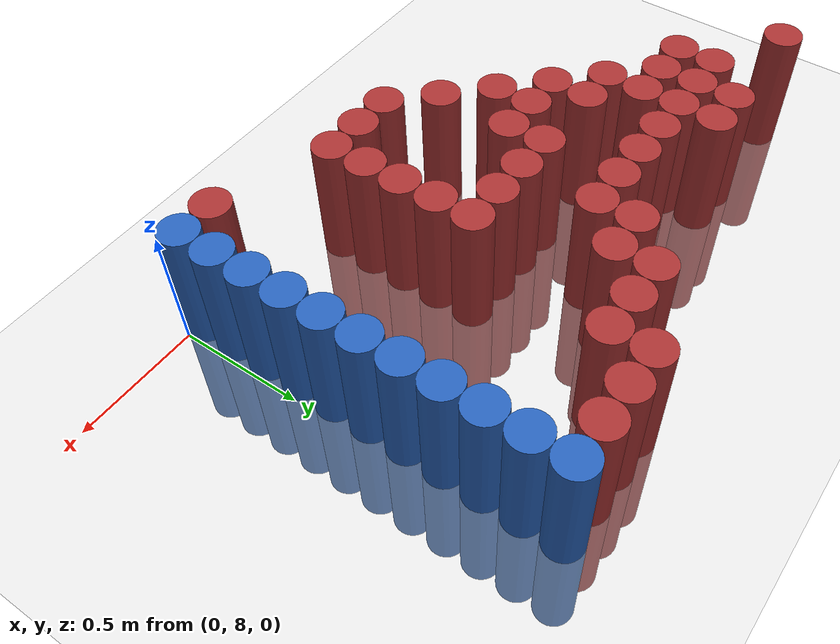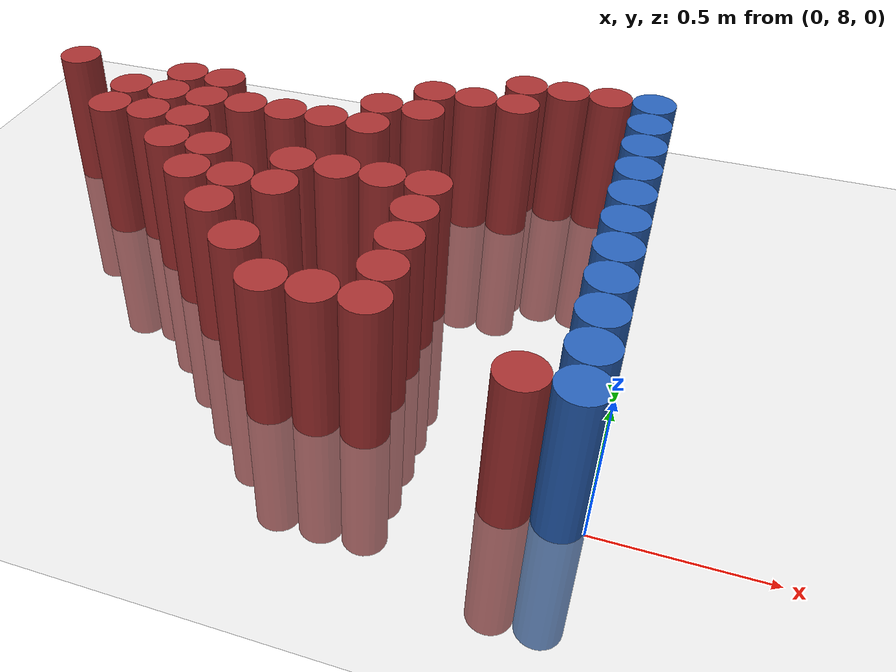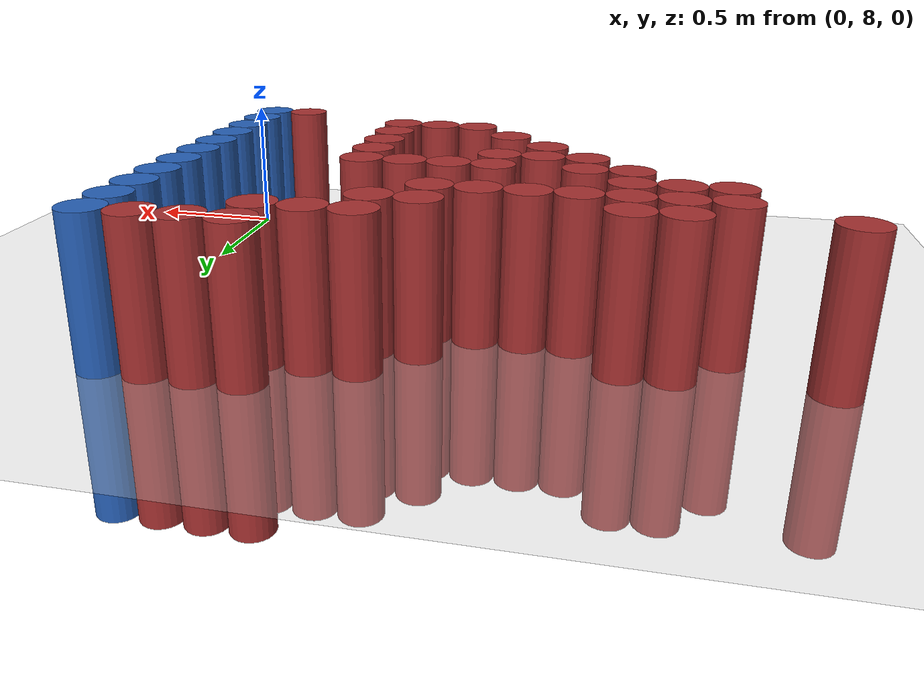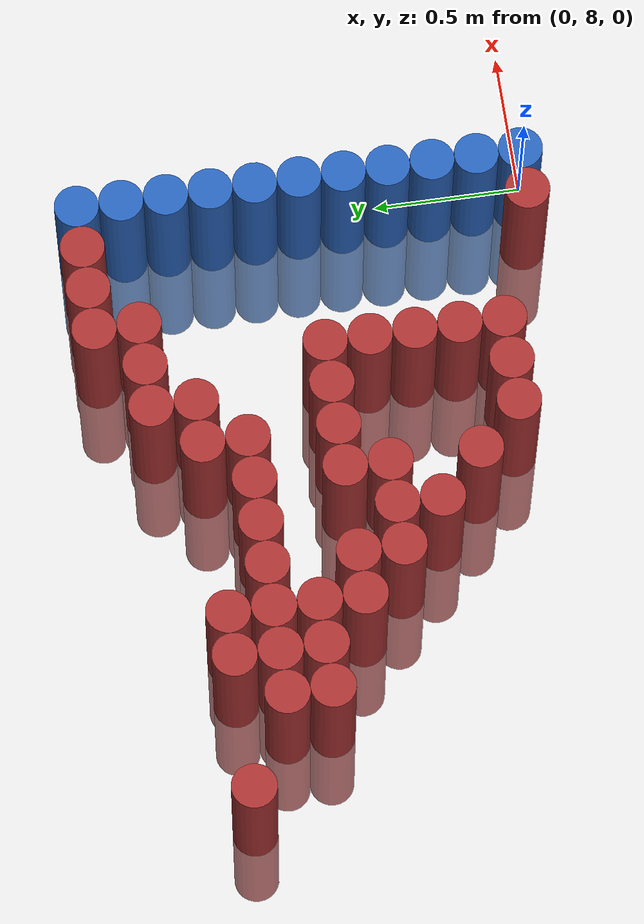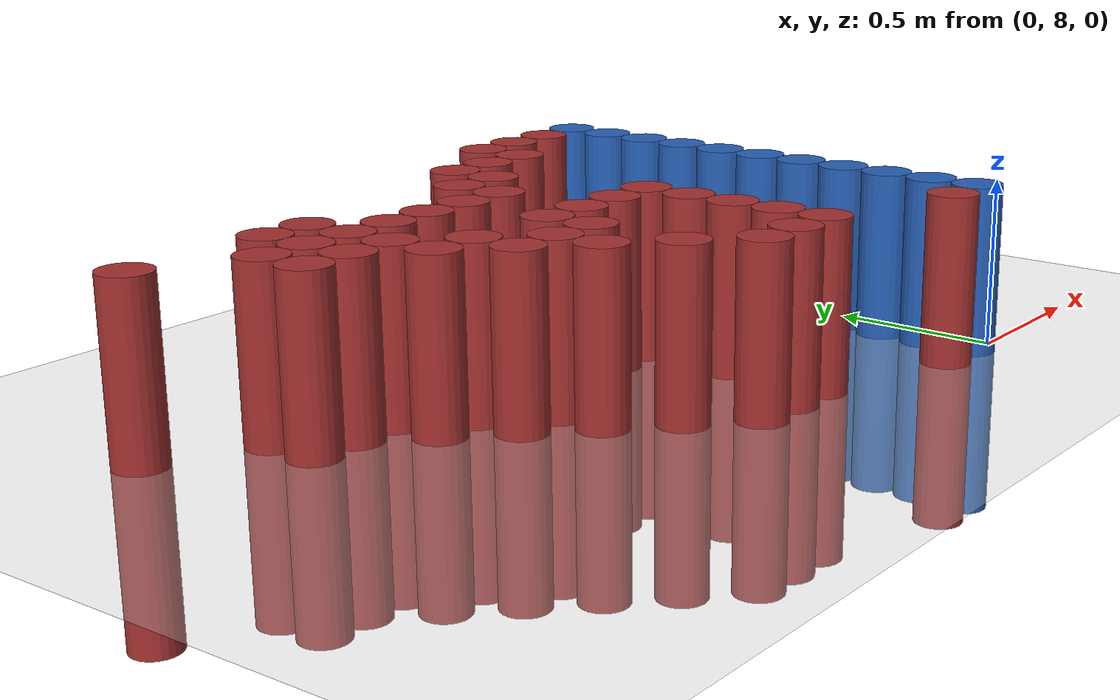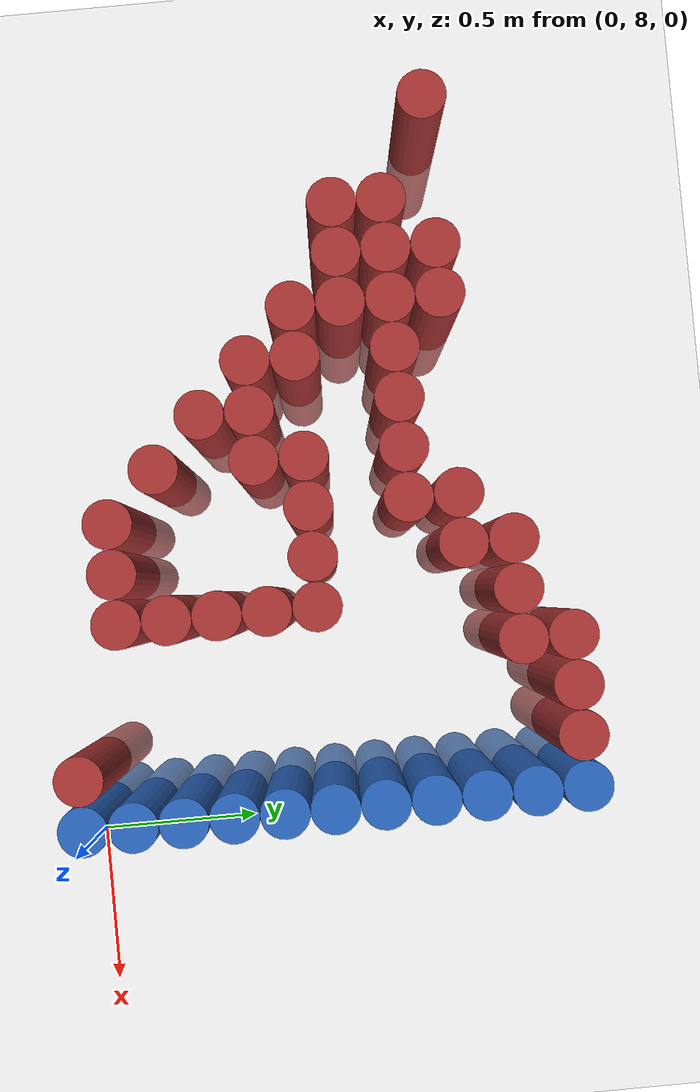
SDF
<sdf version="1.6">
 <world name="default">
  <model name="ground_plane">
   <static>1</static>
   <link name="link">
    <collision name="collision">
     <geometry><plane><normal>0 0 1</normal><size>100 100</size></plane></geometry>
     <surface><friction><ode><mu>100</mu><mu2>50</mu2></ode></friction></surface>
    </collision>
    <visual name="visual">
     <cast_shadows>0</cast_shadows>
     <geometry><plane><normal>0 0 1</normal><size>100 100</size></plane></geometry>
     <material>
      <script><uri>file://media/materials/scripts/gazebo.material</uri><name>Gazebo/Grey</name></script>
     </material>
    </visual>
   </link>
  </model>
  <model name="unit_cylinder_219">
   <static>1</static>
   <pose>-2.175000 9.225000 0.000000 0.000000 0.000000 0.000000</pose>
   <link name="link">
    <inertial>
     <mass>1</mass>
     <inertia><ixx>0.145833</ixx><ixy>0</ixy><ixz>0</ixz><iyy>0.145833</iyy><iyz>0</iyz><izz>0.125</izz></inertia>
    </inertial>
    <collision name="collision">
     <geometry><cylinder><radius>0.075000</radius><length>1</length></cylinder></geometry>
    </collision>
    <visual name="visual">
     <geometry><cylinder><radius>0.075000</radius><length>1</length></cylinder></geometry>
     <material>
      <ambient>0.648000 0.192000 0.192000 1</ambient>
      <diffuse>0.648000 0.192000 0.192000 1</diffuse>
     </material>
     <material>
      <script><name>Gazebo/Grey</name><uri>file://media/materials/scripts/gazebo.material</uri></script>
     </material>
    </visual>
   </link>
  </model>
  <model name="unit_cylinder_220">
   <static>1</static>
   <pose>-1.875000 8.925000 0.000000 0.000000 0.000000 0.000000</pose>
   <link name="link">
    <inertial>
     <mass>1</mass>
     <inertia><ixx>0.145833</ixx><ixy>0</ixy><ixz>0</ixz><iyy>0.145833</iyy><iyz>0</iyz><izz>0.125</izz></inertia>
    </inertial>
    <collision name="collision">
     <geometry><cylinder><radius>0.075000</radius><length>1</length></cylinder></geometry>
    </collision>
    <visual name="visual">
     <geometry><cylinder><radius>0.075000</radius><length>1</length></cylinder></geometry>
     <material>
      <ambient>0.648000 0.192000 0.192000 1</ambient>
      <diffuse>0.648000 0.192000 0.192000 1</diffuse>
     </material>
     <material>
      <script><name>Gazebo/Grey</name><uri>file://media/materials/scripts/gazebo.material</uri></script>
     </material>
    </visual>
   </link>
  </model>
  <model name="unit_cylinder_221">
   <static>1</static>
   <pose>-1.875000 9.075000 0.000000 0.000000 0.000000 0.000000</pose>
   <link name="link">
    <inertial>
     <mass>1</mass>
     <inertia><ixx>0.145833</ixx><ixy>0</ixy><ixz>0</ixz><iyy>0.145833</iyy><iyz>0</iyz><izz>0.125</izz></inertia>
    </inertial>
    <collision name="collision">
     <geometry><cylinder><radius>0.075000</radius><length>1</length></cylinder></geometry>
    </collision>
    <visual name="visual">
     <geometry><cylinder><radius>0.075000</radius><length>1</length></cylinder></geometry>
     <material>
      <ambient>0.648000 0.192000 0.192000 1</ambient>
      <diffuse>0.648000 0.192000 0.192000 1</diffuse>
     </material>
     <material>
      <script><name>Gazebo/Grey</name><uri>file://media/materials/scripts/gazebo.material</uri></script>
     </material>
    </visual>
   </link>
  </model>
  <model name="unit_cylinder_222">
   <static>1</static>
   <pose>-1.725000 8.925000 0.000000 0.000000 0.000000 0.000000</pose>
   <link name="link">
    <inertial>
     <mass>1</mass>
     <inertia><ixx>0.145833</ixx><ixy>0</ixy><ixz>0</ixz><iyy>0.145833</iyy><iyz>0</iyz><izz>0.125</izz></inertia>
    </inertial>
    <collision name="collision">
     <geometry><cylinder><radius>0.075000</radius><length>1</length></cylinder></geometry>
    </collision>
    <visual name="visual">
     <geometry><cylinder><radius>0.075000</radius><length>1</length></cylinder></geometry>
     <material>
      <ambient>0.648000 0.192000 0.192000 1</ambient>
      <diffuse>0.648000 0.192000 0.192000 1</diffuse>
     </material>
     <material>
      <script><name>Gazebo/Grey</name><uri>file://media/materials/scripts/gazebo.material</uri></script>
     </material>
    </visual>
   </link>
  </model>
  <model name="unit_cylinder_223">
   <static>1</static>
   <pose>-1.725000 9.075000 0.000000 0.000000 0.000000 0.000000</pose>
   <link name="link">
    <inertial>
     <mass>1</mass>
     <inertia><ixx>0.145833</ixx><ixy>0</ixy><ixz>0</ixz><iyy>0.145833</iyy><iyz>0</iyz><izz>0.125</izz></inertia>
    </inertial>
    <collision name="collision">
     <geometry><cylinder><radius>0.075000</radius><length>1</length></cylinder></geometry>
    </collision>
    <visual name="visual">
     <geometry><cylinder><radius>0.075000</radius><length>1</length></cylinder></geometry>
     <material>
      <ambient>0.648000 0.192000 0.192000 1</ambient>
      <diffuse>0.648000 0.192000 0.192000 1</diffuse>
     </material>
     <material>
      <script><name>Gazebo/Grey</name><uri>file://media/materials/scripts/gazebo.material</uri></script>
     </material>
    </visual>
   </link>
  </model>
  <model name="unit_cylinder_224">
   <static>1</static>
   <pose>-1.725000 9.225000 0.000000 0.000000 0.000000 0.000000</pose>
   <link name="link">
    <inertial>
     <mass>1</mass>
     <inertia><ixx>0.145833</ixx><ixy>0</ixy><ixz>0</ixz><iyy>0.145833</iyy><iyz>0</iyz><izz>0.125</izz></inertia>
    </inertial>
    <collision name="collision">
     <geometry><cylinder><radius>0.075000</radius><length>1</length></cylinder></geometry>
    </collision>
    <visual name="visual">
     <geometry><cylinder><radius>0.075000</radius><length>1</length></cylinder></geometry>
     <material>
      <ambient>0.648000 0.192000 0.192000 1</ambient>
      <diffuse>0.648000 0.192000 0.192000 1</diffuse>
     </material>
     <material>
      <script><name>Gazebo/Grey</name><uri>file://media/materials/scripts/gazebo.material</uri></script>
     </material>
    </visual>
   </link>
  </model>
  <model name="unit_cylinder_225">
   <static>1</static>
   <pose>-1.575000 8.775000 0.000000 0.000000 0.000000 0.000000</pose>
   <link name="link">
    <inertial>
     <mass>1</mass>
     <inertia><ixx>0.145833</ixx><ixy>0</ixy><ixz>0</ixz><iyy>0.145833</iyy><iyz>0</iyz><izz>0.125</izz></inertia>
    </inertial>
    <collision name="collision">
     <geometry><cylinder><radius>0.075000</radius><length>1</length></cylinder></geometry>
    </collision>
    <visual name="visual">
     <geometry><cylinder><radius>0.075000</radius><length>1</length></cylinder></geometry>
     <material>
      <ambient>0.648000 0.192000 0.192000 1</ambient>
      <diffuse>0.648000 0.192000 0.192000 1</diffuse>
     </material>
     <material>
      <script><name>Gazebo/Grey</name><uri>file://media/materials/scripts/gazebo.material</uri></script>
     </material>
    </visual>
   </link>
  </model>
  <model name="unit_cylinder_226">
   <static>1</static>
   <pose>-1.575000 8.925000 0.000000 0.000000 0.000000 0.000000</pose>
   <link name="link">
    <inertial>
     <mass>1</mass>
     <inertia><ixx>0.145833</ixx><ixy>0</ixy><ixz>0</ixz><iyy>0.145833</iyy><iyz>0</iyz><izz>0.125</izz></inertia>
    </inertial>
    <collision name="collision">
     <geometry><cylinder><radius>0.075000</radius><length>1</length></cylinder></geometry>
    </collision>
    <visual name="visual">
     <geometry><cylinder><radius>0.075000</radius><length>1</length></cylinder></geometry>
     <material>
      <ambient>0.648000 0.192000 0.192000 1</ambient>
      <diffuse>0.648000 0.192000 0.192000 1</diffuse>
     </material>
     <material>
      <script><name>Gazebo/Grey</name><uri>file://media/materials/scripts/gazebo.material</uri></script>
     </material>
    </visual>
   </link>
  </model>
  <model name="unit_cylinder_227">
   <static>1</static>
   <pose>-1.575000 9.075000 0.000000 0.000000 0.000000 0.000000</pose>
   <link name="link">
    <inertial>
     <mass>1</mass>
     <inertia><ixx>0.145833</ixx><ixy>0</ixy><ixz>0</ixz><iyy>0.145833</iyy><iyz>0</iyz><izz>0.125</izz></inertia>
    </inertial>
    <collision name="collision">
     <geometry><cylinder><radius>0.075000</radius><length>1</length></cylinder></geometry>
    </collision>
    <visual name="visual">
     <geometry><cylinder><radius>0.075000</radius><length>1</length></cylinder></geometry>
     <material>
      <ambient>0.648000 0.192000 0.192000 1</ambient>
      <diffuse>0.648000 0.192000 0.192000 1</diffuse>
     </material>
     <material>
      <script><name>Gazebo/Grey</name><uri>file://media/materials/scripts/gazebo.material</uri></script>
     </material>
    </visual>
   </link>
  </model>
  <model name="unit_cylinder_228">
   <static>1</static>
   <pose>-1.575000 9.225000 0.000000 0.000000 0.000000 0.000000</pose>
   <link name="link">
    <inertial>
     <mass>1</mass>
     <inertia><ixx>0.145833</ixx><ixy>0</ixy><ixz>0</ixz><iyy>0.145833</iyy><iyz>0</iyz><izz>0.125</izz></inertia>
    </inertial>
    <collision name="collision">
     <geometry><cylinder><radius>0.075000</radius><length>1</length></cylinder></geometry>
    </collision>
    <visual name="visual">
     <geometry><cylinder><radius>0.075000</radius><length>1</length></cylinder></geometry>
     <material>
      <ambient>0.648000 0.192000 0.192000 1</ambient>
      <diffuse>0.648000 0.192000 0.192000 1</diffuse>
     </material>
     <material>
      <script><name>Gazebo/Grey</name><uri>file://media/materials/scripts/gazebo.material</uri></script>
     </material>
    </visual>
   </link>
  </model>
  <model name="unit_cylinder_234">
   <static>1</static>
   <pose>-1.425000 8.625000 0.000000 0.000000 0.000000 0.000000</pose>
   <link name="link">
    <inertial>
     <mass>1</mass>
     <inertia><ixx>0.145833</ixx><ixy>0</ixy><ixz>0</ixz><iyy>0.145833</iyy><iyz>0</iyz><izz>0.125</izz></inertia>
    </inertial>
    <collision name="collision">
     <geometry><cylinder><radius>0.075000</radius><length>1</length></cylinder></geometry>
    </collision>
    <visual name="visual">
     <geometry><cylinder><radius>0.075000</radius><length>1</length></cylinder></geometry>
     <material>
      <ambient>0.648000 0.192000 0.192000 1</ambient>
      <diffuse>0.648000 0.192000 0.192000 1</diffuse>
     </material>
     <material>
      <script><name>Gazebo/Grey</name><uri>file://media/materials/scripts/gazebo.material</uri></script>
     </material>
    </visual>
   </link>
  </model>
  <model name="unit_cylinder_235">
   <static>1</static>
   <pose>-1.425000 8.775000 0.000000 0.000000 0.000000 0.000000</pose>
   <link name="link">
    <inertial>
     <mass>1</mass>
     <inertia><ixx>0.145833</ixx><ixy>0</ixy><ixz>0</ixz><iyy>0.145833</iyy><iyz>0</iyz><izz>0.125</izz></inertia>
    </inertial>
    <collision name="collision">
     <geometry><cylinder><radius>0.075000</radius><length>1</length></cylinder></geometry>
    </collision>
    <visual name="visual">
     <geometry><cylinder><radius>0.075000</radius><length>1</length></cylinder></geometry>
     <material>
      <ambient>0.648000 0.192000 0.192000 1</ambient>
      <diffuse>0.648000 0.192000 0.192000 1</diffuse>
     </material>
     <material>
      <script><name>Gazebo/Grey</name><uri>file://media/materials/scripts/gazebo.material</uri></script>
     </material>
    </visual>
   </link>
  </model>
  <model name="unit_cylinder_236">
   <static>1</static>
   <pose>-1.425000 9.075000 0.000000 0.000000 0.000000 0.000000</pose>
   <link name="link">
    <inertial>
     <mass>1</mass>
     <inertia><ixx>0.145833</ixx><ixy>0</ixy><ixz>0</ixz><iyy>0.145833</iyy><iyz>0</iyz><izz>0.125</izz></inertia>
    </inertial>
    <collision name="collision">
     <geometry><cylinder><radius>0.075000</radius><length>1</length></cylinder></geometry>
    </collision>
    <visual name="visual">
     <geometry><cylinder><radius>0.075000</radius><length>1</length></cylinder></geometry>
     <material>
      <ambient>0.648000 0.192000 0.192000 1</ambient>
      <diffuse>0.648000 0.192000 0.192000 1</diffuse>
     </material>
     <material>
      <script><name>Gazebo/Grey</name><uri>file://media/materials/scripts/gazebo.material</uri></script>
     </material>
    </visual>
   </link>
  </model>
  <model name="unit_cylinder_243">
   <static>1</static>
   <pose>-1.275000 8.475000 0.000000 0.000000 0.000000 0.000000</pose>
   <link name="link">
    <inertial>
     <mass>1</mass>
     <inertia><ixx>0.145833</ixx><ixy>0</ixy><ixz>0</ixz><iyy>0.145833</iyy><iyz>0</iyz><izz>0.125</izz></inertia>
    </inertial>
    <collision name="collision">
     <geometry><cylinder><radius>0.075000</radius><length>1</length></cylinder></geometry>
    </collision>
    <visual name="visual">
     <geometry><cylinder><radius>0.075000</radius><length>1</length></cylinder></geometry>
     <material>
      <ambient>0.648000 0.192000 0.192000 1</ambient>
      <diffuse>0.648000 0.192000 0.192000 1</diffuse>
     </material>
     <material>
      <script><name>Gazebo/Grey</name><uri>file://media/materials/scripts/gazebo.material</uri></script>
     </material>
    </visual>
   </link>
  </model>
  <model name="unit_cylinder_244">
   <static>1</static>
   <pose>-1.275000 8.625000 0.000000 0.000000 0.000000 0.000000</pose>
   <link name="link">
    <inertial>
     <mass>1</mass>
     <inertia><ixx>0.145833</ixx><ixy>0</ixy><ixz>0</ixz><iyy>0.145833</iyy><iyz>0</iyz><izz>0.125</izz></inertia>
    </inertial>
    <collision name="collision">
     <geometry><cylinder><radius>0.075000</radius><length>1</length></cylinder></geometry>
    </collision>
    <visual name="visual">
     <geometry><cylinder><radius>0.075000</radius><length>1</length></cylinder></geometry>
     <material>
      <ambient>0.648000 0.192000 0.192000 1</ambient>
      <diffuse>0.648000 0.192000 0.192000 1</diffuse>
     </material>
     <material>
      <script><name>Gazebo/Grey</name><uri>file://media/materials/scripts/gazebo.material</uri></script>
     </material>
    </visual>
   </link>
  </model>
  <model name="unit_cylinder_245">
   <static>1</static>
   <pose>-1.275000 9.075000 0.000000 0.000000 0.000000 0.000000</pose>
   <link name="link">
    <inertial>
     <mass>1</mass>
     <inertia><ixx>0.145833</ixx><ixy>0</ixy><ixz>0</ixz><iyy>0.145833</iyy><iyz>0</iyz><izz>0.125</izz></inertia>
    </inertial>
    <collision name="collision">
     <geometry><cylinder><radius>0.075000</radius><length>1</length></cylinder></geometry>
    </collision>
    <visual name="visual">
     <geometry><cylinder><radius>0.075000</radius><length>1</length></cylinder></geometry>
     <material>
      <ambient>0.648000 0.192000 0.192000 1</ambient>
      <diffuse>0.648000 0.192000 0.192000 1</diffuse>
     </material>
     <material>
      <script><name>Gazebo/Grey</name><uri>file://media/materials/scripts/gazebo.material</uri></script>
     </material>
    </visual>
   </link>
  </model>
  <model name="unit_cylinder_248">
   <static>1</static>
   <pose>-1.125000 8.325000 0.000000 0.000000 0.000000 0.000000</pose>
   <link name="link">
    <inertial>
     <mass>1</mass>
     <inertia><ixx>0.145833</ixx><ixy>0</ixy><ixz>0</ixz><iyy>0.145833</iyy><iyz>0</iyz><izz>0.125</izz></inertia>
    </inertial>
    <collision name="collision">
     <geometry><cylinder><radius>0.075000</radius><length>1</length></cylinder></geometry>
    </collision>
    <visual name="visual">
     <geometry><cylinder><radius>0.075000</radius><length>1</length></cylinder></geometry>
     <material>
      <ambient>0.648000 0.192000 0.192000 1</ambient>
      <diffuse>0.648000 0.192000 0.192000 1</diffuse>
     </material>
     <material>
      <script><name>Gazebo/Grey</name><uri>file://media/materials/scripts/gazebo.material</uri></script>
     </material>
    </visual>
   </link>
  </model>
  <model name="unit_cylinder_249">
   <static>1</static>
   <pose>-1.125000 8.625000 0.000000 0.000000 0.000000 0.000000</pose>
   <link name="link">
    <inertial>
     <mass>1</mass>
     <inertia><ixx>0.145833</ixx><ixy>0</ixy><ixz>0</ixz><iyy>0.145833</iyy><iyz>0</iyz><izz>0.125</izz></inertia>
    </inertial>
    <collision name="collision">
     <geometry><cylinder><radius>0.075000</radius><length>1</length></cylinder></geometry>
    </collision>
    <visual name="visual">
     <geometry><cylinder><radius>0.075000</radius><length>1</length></cylinder></geometry>
     <material>
      <ambient>0.648000 0.192000 0.192000 1</ambient>
      <diffuse>0.648000 0.192000 0.192000 1</diffuse>
     </material>
     <material>
      <script><name>Gazebo/Grey</name><uri>file://media/materials/scripts/gazebo.material</uri></script>
     </material>
    </visual>
   </link>
  </model>
  <model name="unit_cylinder_250">
   <static>1</static>
   <pose>-1.125000 8.775000 0.000000 0.000000 0.000000 0.000000</pose>
   <link name="link">
    <inertial>
     <mass>1</mass>
     <inertia><ixx>0.145833</ixx><ixy>0</ixy><ixz>0</ixz><iyy>0.145833</iyy><iyz>0</iyz><izz>0.125</izz></inertia>
    </inertial>
    <collision name="collision">
     <geometry><cylinder><radius>0.075000</radius><length>1</length></cylinder></geometry>
    </collision>
    <visual name="visual">
     <geometry><cylinder><radius>0.075000</radius><length>1</length></cylinder></geometry>
     <material>
      <ambient>0.648000 0.192000 0.192000 1</ambient>
      <diffuse>0.648000 0.192000 0.192000 1</diffuse>
     </material>
     <material>
      <script><name>Gazebo/Grey</name><uri>file://media/materials/scripts/gazebo.material</uri></script>
     </material>
    </visual>
   </link>
  </model>
  <model name="unit_cylinder_251">
   <static>1</static>
   <pose>-1.125000 9.075000 0.000000 0.000000 0.000000 0.000000</pose>
   <link name="link">
    <inertial>
     <mass>1</mass>
     <inertia><ixx>0.145833</ixx><ixy>0</ixy><ixz>0</ixz><iyy>0.145833</iyy><iyz>0</iyz><izz>0.125</izz></inertia>
    </inertial>
    <collision name="collision">
     <geometry><cylinder><radius>0.075000</radius><length>1</length></cylinder></geometry>
    </collision>
    <visual name="visual">
     <geometry><cylinder><radius>0.075000</radius><length>1</length></cylinder></geometry>
     <material>
      <ambient>0.648000 0.192000 0.192000 1</ambient>
      <diffuse>0.648000 0.192000 0.192000 1</diffuse>
     </material>
     <material>
      <script><name>Gazebo/Grey</name><uri>file://media/materials/scripts/gazebo.material</uri></script>
     </material>
    </visual>
   </link>
  </model>
  <model name="unit_cylinder_256">
   <static>1</static>
   <pose>-0.975000 8.175000 0.000000 0.000000 0.000000 0.000000</pose>
   <link name="link">
    <inertial>
     <mass>1</mass>
     <inertia><ixx>0.145833</ixx><ixy>0</ixy><ixz>0</ixz><iyy>0.145833</iyy><iyz>0</iyz><izz>0.125</izz></inertia>
    </inertial>
    <collision name="collision">
     <geometry><cylinder><radius>0.075000</radius><length>1</length></cylinder></geometry>
    </collision>
    <visual name="visual">
     <geometry><cylinder><radius>0.075000</radius><length>1</length></cylinder></geometry>
     <material>
      <ambient>0.648000 0.192000 0.192000 1</ambient>
      <diffuse>0.648000 0.192000 0.192000 1</diffuse>
     </material>
     <material>
      <script><name>Gazebo/Grey</name><uri>file://media/materials/scripts/gazebo.material</uri></script>
     </material>
    </visual>
   </link>
  </model>
  <model name="unit_cylinder_257">
   <static>1</static>
   <pose>-0.975000 8.775000 0.000000 0.000000 0.000000 0.000000</pose>
   <link name="link">
    <inertial>
     <mass>1</mass>
     <inertia><ixx>0.145833</ixx><ixy>0</ixy><ixz>0</ixz><iyy>0.145833</iyy><iyz>0</iyz><izz>0.125</izz></inertia>
    </inertial>
    <collision name="collision">
     <geometry><cylinder><radius>0.075000</radius><length>1</length></cylinder></geometry>
    </collision>
    <visual name="visual">
     <geometry><cylinder><radius>0.075000</radius><length>1</length></cylinder></geometry>
     <material>
      <ambient>0.648000 0.192000 0.192000 1</ambient>
      <diffuse>0.648000 0.192000 0.192000 1</diffuse>
     </material>
     <material>
      <script><name>Gazebo/Grey</name><uri>file://media/materials/scripts/gazebo.material</uri></script>
     </material>
    </visual>
   </link>
  </model>
  <model name="unit_cylinder_258">
   <static>1</static>
   <pose>-0.975000 9.075000 0.000000 0.000000 0.000000 0.000000</pose>
   <link name="link">
    <inertial>
     <mass>1</mass>
     <inertia><ixx>0.145833</ixx><ixy>0</ixy><ixz>0</ixz><iyy>0.145833</iyy><iyz>0</iyz><izz>0.125</izz></inertia>
    </inertial>
    <collision name="collision">
     <geometry><cylinder><radius>0.075000</radius><length>1</length></cylinder></geometry>
    </collision>
    <visual name="visual">
     <geometry><cylinder><radius>0.075000</radius><length>1</length></cylinder></geometry>
     <material>
      <ambient>0.648000 0.192000 0.192000 1</ambient>
      <diffuse>0.648000 0.192000 0.192000 1</diffuse>
     </material>
     <material>
      <script><name>Gazebo/Grey</name><uri>file://media/materials/scripts/gazebo.material</uri></script>
     </material>
    </visual>
   </link>
  </model>
  <model name="unit_cylinder_259">
   <static>1</static>
   <pose>-0.975000 9.225000 0.000000 0.000000 0.000000 0.000000</pose>
   <link name="link">
    <inertial>
     <mass>1</mass>
     <inertia><ixx>0.145833</ixx><ixy>0</ixy><ixz>0</ixz><iyy>0.145833</iyy><iyz>0</iyz><izz>0.125</izz></inertia>
    </inertial>
    <collision name="collision">
     <geometry><cylinder><radius>0.075000</radius><length>1</length></cylinder></geometry>
    </collision>
    <visual name="visual">
     <geometry><cylinder><radius>0.075000</radius><length>1</length></cylinder></geometry>
     <material>
      <ambient>0.648000 0.192000 0.192000 1</ambient>
      <diffuse>0.648000 0.192000 0.192000 1</diffuse>
     </material>
     <material>
      <script><name>Gazebo/Grey</name><uri>file://media/materials/scripts/gazebo.material</uri></script>
     </material>
    </visual>
   </link>
  </model>
  <model name="unit_cylinder_267">
   <static>1</static>
   <pose>-0.825000 8.175000 0.000000 0.000000 0.000000 0.000000</pose>
   <link name="link">
    <inertial>
     <mass>1</mass>
     <inertia><ixx>0.145833</ixx><ixy>0</ixy><ixz>0</ixz><iyy>0.145833</iyy><iyz>0</iyz><izz>0.125</izz></inertia>
    </inertial>
    <collision name="collision">
     <geometry><cylinder><radius>0.075000</radius><length>1</length></cylinder></geometry>
    </collision>
    <visual name="visual">
     <geometry><cylinder><radius>0.075000</radius><length>1</length></cylinder></geometry>
     <material>
      <ambient>0.648000 0.192000 0.192000 1</ambient>
      <diffuse>0.648000 0.192000 0.192000 1</diffuse>
     </material>
     <material>
      <script><name>Gazebo/Grey</name><uri>file://media/materials/scripts/gazebo.material</uri></script>
     </material>
    </visual>
   </link>
  </model>
  <model name="unit_cylinder_268">
   <static>1</static>
   <pose>-0.825000 8.775000 0.000000 0.000000 0.000000 0.000000</pose>
   <link name="link">
    <inertial>
     <mass>1</mass>
     <inertia><ixx>0.145833</ixx><ixy>0</ixy><ixz>0</ixz><iyy>0.145833</iyy><iyz>0</iyz><izz>0.125</izz></inertia>
    </inertial>
    <collision name="collision">
     <geometry><cylinder><radius>0.075000</radius><length>1</length></cylinder></geometry>
    </collision>
    <visual name="visual">
     <geometry><cylinder><radius>0.075000</radius><length>1</length></cylinder></geometry>
     <material>
      <ambient>0.648000 0.192000 0.192000 1</ambient>
      <diffuse>0.648000 0.192000 0.192000 1</diffuse>
     </material>
     <material>
      <script><name>Gazebo/Grey</name><uri>file://media/materials/scripts/gazebo.material</uri></script>
     </material>
    </visual>
   </link>
  </model>
  <model name="unit_cylinder_269">
   <static>1</static>
   <pose>-0.825000 9.225000 0.000000 0.000000 0.000000 0.000000</pose>
   <link name="link">
    <inertial>
     <mass>1</mass>
     <inertia><ixx>0.145833</ixx><ixy>0</ixy><ixz>0</ixz><iyy>0.145833</iyy><iyz>0</iyz><izz>0.125</izz></inertia>
    </inertial>
    <collision name="collision">
     <geometry><cylinder><radius>0.075000</radius><length>1</length></cylinder></geometry>
    </collision>
    <visual name="visual">
     <geometry><cylinder><radius>0.075000</radius><length>1</length></cylinder></geometry>
     <material>
      <ambient>0.648000 0.192000 0.192000 1</ambient>
      <diffuse>0.648000 0.192000 0.192000 1</diffuse>
     </material>
     <material>
      <script><name>Gazebo/Grey</name><uri>file://media/materials/scripts/gazebo.material</uri></script>
     </material>
    </visual>
   </link>
  </model>
  <model name="unit_cylinder_270">
   <static>1</static>
   <pose>-0.825000 9.375000 0.000000 0.000000 0.000000 0.000000</pose>
   <link name="link">
    <inertial>
     <mass>1</mass>
     <inertia><ixx>0.145833</ixx><ixy>0</ixy><ixz>0</ixz><iyy>0.145833</iyy><iyz>0</iyz><izz>0.125</izz></inertia>
    </inertial>
    <collision name="collision">
     <geometry><cylinder><radius>0.075000</radius><length>1</length></cylinder></geometry>
    </collision>
    <visual name="visual">
     <geometry><cylinder><radius>0.075000</radius><length>1</length></cylinder></geometry>
     <material>
      <ambient>0.648000 0.192000 0.192000 1</ambient>
      <diffuse>0.648000 0.192000 0.192000 1</diffuse>
     </material>
     <material>
      <script><name>Gazebo/Grey</name><uri>file://media/materials/scripts/gazebo.material</uri></script>
     </material>
    </visual>
   </link>
  </model>
  <model name="unit_cylinder_282">
   <static>1</static>
   <pose>-0.675000 8.175000 0.000000 0.000000 0.000000 0.000000</pose>
   <link name="link">
    <inertial>
     <mass>1</mass>
     <inertia><ixx>0.145833</ixx><ixy>0</ixy><ixz>0</ixz><iyy>0.145833</iyy><iyz>0</iyz><izz>0.125</izz></inertia>
    </inertial>
    <collision name="collision">
     <geometry><cylinder><radius>0.075000</radius><length>1</length></cylinder></geometry>
    </collision>
    <visual name="visual">
     <geometry><cylinder><radius>0.075000</radius><length>1</length></cylinder></geometry>
     <material>
      <ambient>0.648000 0.192000 0.192000 1</ambient>
      <diffuse>0.648000 0.192000 0.192000 1</diffuse>
     </material>
     <material>
      <script><name>Gazebo/Grey</name><uri>file://media/materials/scripts/gazebo.material</uri></script>
     </material>
    </visual>
   </link>
  </model>
  <model name="unit_cylinder_283">
   <static>1</static>
   <pose>-0.675000 8.325000 0.000000 0.000000 0.000000 0.000000</pose>
   <link name="link">
    <inertial>
     <mass>1</mass>
     <inertia><ixx>0.145833</ixx><ixy>0</ixy><ixz>0</ixz><iyy>0.145833</iyy><iyz>0</iyz><izz>0.125</izz></inertia>
    </inertial>
    <collision name="collision">
     <geometry><cylinder><radius>0.075000</radius><length>1</length></cylinder></geometry>
    </collision>
    <visual name="visual">
     <geometry><cylinder><radius>0.075000</radius><length>1</length></cylinder></geometry>
     <material>
      <ambient>0.648000 0.192000 0.192000 1</ambient>
      <diffuse>0.648000 0.192000 0.192000 1</diffuse>
     </material>
     <material>
      <script><name>Gazebo/Grey</name><uri>file://media/materials/scripts/gazebo.material</uri></script>
     </material>
    </visual>
   </link>
  </model>
  <model name="unit_cylinder_284">
   <static>1</static>
   <pose>-0.675000 8.475000 0.000000 0.000000 0.000000 0.000000</pose>
   <link name="link">
    <inertial>
     <mass>1</mass>
     <inertia><ixx>0.145833</ixx><ixy>0</ixy><ixz>0</ixz><iyy>0.145833</iyy><iyz>0</iyz><izz>0.125</izz></inertia>
    </inertial>
    <collision name="collision">
     <geometry><cylinder><radius>0.075000</radius><length>1</length></cylinder></geometry>
    </collision>
    <visual name="visual">
     <geometry><cylinder><radius>0.075000</radius><length>1</length></cylinder></geometry>
     <material>
      <ambient>0.648000 0.192000 0.192000 1</ambient>
      <diffuse>0.648000 0.192000 0.192000 1</diffuse>
     </material>
     <material>
      <script><name>Gazebo/Grey</name><uri>file://media/materials/scripts/gazebo.material</uri></script>
     </material>
    </visual>
   </link>
  </model>
  <model name="unit_cylinder_285">
   <static>1</static>
   <pose>-0.675000 8.625000 0.000000 0.000000 0.000000 0.000000</pose>
   <link name="link">
    <inertial>
     <mass>1</mass>
     <inertia><ixx>0.145833</ixx><ixy>0</ixy><ixz>0</ixz><iyy>0.145833</iyy><iyz>0</iyz><izz>0.125</izz></inertia>
    </inertial>
    <collision name="collision">
     <geometry><cylinder><radius>0.075000</radius><length>1</length></cylinder></geometry>
    </collision>
    <visual name="visual">
     <geometry><cylinder><radius>0.075000</radius><length>1</length></cylinder></geometry>
     <material>
      <ambient>0.648000 0.192000 0.192000 1</ambient>
      <diffuse>0.648000 0.192000 0.192000 1</diffuse>
     </material>
     <material>
      <script><name>Gazebo/Grey</name><uri>file://media/materials/scripts/gazebo.material</uri></script>
     </material>
    </visual>
   </link>
  </model>
  <model name="unit_cylinder_286">
   <static>1</static>
   <pose>-0.675000 8.775000 0.000000 0.000000 0.000000 0.000000</pose>
   <link name="link">
    <inertial>
     <mass>1</mass>
     <inertia><ixx>0.145833</ixx><ixy>0</ixy><ixz>0</ixz><iyy>0.145833</iyy><iyz>0</iyz><izz>0.125</izz></inertia>
    </inertial>
    <collision name="collision">
     <geometry><cylinder><radius>0.075000</radius><length>1</length></cylinder></geometry>
    </collision>
    <visual name="visual">
     <geometry><cylinder><radius>0.075000</radius><length>1</length></cylinder></geometry>
     <material>
      <ambient>0.648000 0.192000 0.192000 1</ambient>
      <diffuse>0.648000 0.192000 0.192000 1</diffuse>
     </material>
     <material>
      <script><name>Gazebo/Grey</name><uri>file://media/materials/scripts/gazebo.material</uri></script>
     </material>
    </visual>
   </link>
  </model>
  <model name="unit_cylinder_287">
   <static>1</static>
   <pose>-0.675000 9.375000 0.000000 0.000000 0.000000 0.000000</pose>
   <link name="link">
    <inertial>
     <mass>1</mass>
     <inertia><ixx>0.145833</ixx><ixy>0</ixy><ixz>0</ixz><iyy>0.145833</iyy><iyz>0</iyz><izz>0.125</izz></inertia>
    </inertial>
    <collision name="collision">
     <geometry><cylinder><radius>0.075000</radius><length>1</length></cylinder></geometry>
    </collision>
    <visual name="visual">
     <geometry><cylinder><radius>0.075000</radius><length>1</length></cylinder></geometry>
     <material>
      <ambient>0.648000 0.192000 0.192000 1</ambient>
      <diffuse>0.648000 0.192000 0.192000 1</diffuse>
     </material>
     <material>
      <script><name>Gazebo/Grey</name><uri>file://media/materials/scripts/gazebo.material</uri></script>
     </material>
    </visual>
   </link>
  </model>
  <model name="unit_cylinder_294">
   <static>1</static>
   <pose>-0.525000 9.375000 0.000000 0.000000 0.000000 0.000000</pose>
   <link name="link">
    <inertial>
     <mass>1</mass>
     <inertia><ixx>0.145833</ixx><ixy>0</ixy><ixz>0</ixz><iyy>0.145833</iyy><iyz>0</iyz><izz>0.125</izz></inertia>
    </inertial>
    <collision name="collision">
     <geometry><cylinder><radius>0.075000</radius><length>1</length></cylinder></geometry>
    </collision>
    <visual name="visual">
     <geometry><cylinder><radius>0.075000</radius><length>1</length></cylinder></geometry>
     <material>
      <ambient>0.648000 0.192000 0.192000 1</ambient>
      <diffuse>0.648000 0.192000 0.192000 1</diffuse>
     </material>
     <material>
      <script><name>Gazebo/Grey</name><uri>file://media/materials/scripts/gazebo.material</uri></script>
     </material>
    </visual>
   </link>
  </model>
  <model name="unit_cylinder_295">
   <static>1</static>
   <pose>-0.525000 9.525000 0.000000 0.000000 0.000000 0.000000</pose>
   <link name="link">
    <inertial>
     <mass>1</mass>
     <inertia><ixx>0.145833</ixx><ixy>0</ixy><ixz>0</ixz><iyy>0.145833</iyy><iyz>0</iyz><izz>0.125</izz></inertia>
    </inertial>
    <collision name="collision">
     <geometry><cylinder><radius>0.075000</radius><length>1</length></cylinder></geometry>
    </collision>
    <visual name="visual">
     <geometry><cylinder><radius>0.075000</radius><length>1</length></cylinder></geometry>
     <material>
      <ambient>0.648000 0.192000 0.192000 1</ambient>
      <diffuse>0.648000 0.192000 0.192000 1</diffuse>
     </material>
     <material>
      <script><name>Gazebo/Grey</name><uri>file://media/materials/scripts/gazebo.material</uri></script>
     </material>
    </visual>
   </link>
  </model>
  <model name="unit_cylinder_303">
   <static>1</static>
   <pose>-0.375000 9.525000 0.000000 0.000000 0.000000 0.000000</pose>
   <link name="link">
    <inertial>
     <mass>1</mass>
     <inertia><ixx>0.145833</ixx><ixy>0</ixy><ixz>0</ixz><iyy>0.145833</iyy><iyz>0</iyz><izz>0.125</izz></inertia>
    </inertial>
    <collision name="collision">
     <geometry><cylinder><radius>0.075000</radius><length>1</length></cylinder></geometry>
    </collision>
    <visual name="visual">
     <geometry><cylinder><radius>0.075000</radius><length>1</length></cylinder></geometry>
     <material>
      <ambient>0.648000 0.192000 0.192000 1</ambient>
      <diffuse>0.648000 0.192000 0.192000 1</diffuse>
     </material>
     <material>
      <script><name>Gazebo/Grey</name><uri>file://media/materials/scripts/gazebo.material</uri></script>
     </material>
    </visual>
   </link>
  </model>
  <model name="unit_cylinder_312">
   <static>1</static>
   <pose>-0.225000 8.025000 0.000000 0.000000 0.000000 0.000000</pose>
   <link name="link">
    <inertial>
     <mass>1</mass>
     <inertia><ixx>0.145833</ixx><ixy>0</ixy><ixz>0</ixz><iyy>0.145833</iyy><iyz>0</iyz><izz>0.125</izz></inertia>
    </inertial>
    <collision name="collision">
     <geometry><cylinder><radius>0.075000</radius><length>1</length></cylinder></geometry>
    </collision>
    <visual name="visual">
     <geometry><cylinder><radius>0.075000</radius><length>1</length></cylinder></geometry>
     <material>
      <ambient>0.648000 0.192000 0.192000 1</ambient>
      <diffuse>0.648000 0.192000 0.192000 1</diffuse>
     </material>
     <material>
      <script><name>Gazebo/Grey</name><uri>file://media/materials/scripts/gazebo.material</uri></script>
     </material>
    </visual>
   </link>
  </model>
  <model name="unit_cylinder_313">
   <static>1</static>
   <pose>-0.225000 9.525000 0.000000 0.000000 0.000000 0.000000</pose>
   <link name="link">
    <inertial>
     <mass>1</mass>
     <inertia><ixx>0.145833</ixx><ixy>0</ixy><ixz>0</ixz><iyy>0.145833</iyy><iyz>0</iyz><izz>0.125</izz></inertia>
    </inertial>
    <collision name="collision">
     <geometry><cylinder><radius>0.075000</radius><length>1</length></cylinder></geometry>
    </collision>
    <visual name="visual">
     <geometry><cylinder><radius>0.075000</radius><length>1</length></cylinder></geometry>
     <material>
      <ambient>0.648000 0.192000 0.192000 1</ambient>
      <diffuse>0.648000 0.192000 0.192000 1</diffuse>
     </material>
     <material>
      <script><name>Gazebo/Grey</name><uri>file://media/materials/scripts/gazebo.material</uri></script>
     </material>
    </visual>
   </link>
  </model>
  <model name="unit_cylinder_333">
   <static>1</static>
   <pose>-0.075000 8.025000 0.000000 0.000000 0.000000 0.000000</pose>
   <link name="link">
    <inertial>
     <mass>1</mass>
     <inertia><ixx>0.145833</ixx><ixy>0</ixy><ixz>0</ixz><iyy>0.145833</iyy><iyz>0</iyz><izz>0.125</izz></inertia>
    </inertial>
    <collision name="collision">
     <geometry><cylinder><radius>0.075000</radius><length>1</length></cylinder></geometry>
    </collision>
    <visual name="visual">
     <geometry><cylinder><radius>0.075000</radius><length>1</length></cylinder></geometry>
     <material>
      <ambient>0.152000 0.379000 0.720000 1</ambient>
      <diffuse>0.152000 0.379000 0.720000 1</diffuse>
     </material>
     <material>
      <script><name>Gazebo/Grey</name><uri>file://media/materials/scripts/gazebo.material</uri></script>
     </material>
    </visual>
   </link>
  </model>
  <model name="unit_cylinder_334">
   <static>1</static>
   <pose>-0.075000 8.175000 0.000000 0.000000 0.000000 0.000000</pose>
   <link name="link">
    <inertial>
     <mass>1</mass>
     <inertia><ixx>0.145833</ixx><ixy>0</ixy><ixz>0</ixz><iyy>0.145833</iyy><iyz>0</iyz><izz>0.125</izz></inertia>
    </inertial>
    <collision name="collision">
     <geometry><cylinder><radius>0.075000</radius><length>1</length></cylinder></geometry>
    </collision>
    <visual name="visual">
     <geometry><cylinder><radius>0.075000</radius><length>1</length></cylinder></geometry>
     <material>
      <ambient>0.152000 0.379000 0.720000 1</ambient>
      <diffuse>0.152000 0.379000 0.720000 1</diffuse>
     </material>
     <material>
      <script><name>Gazebo/Grey</name><uri>file://media/materials/scripts/gazebo.material</uri></script>
     </material>
    </visual>
   </link>
  </model>
  <model name="unit_cylinder_335">
   <static>1</static>
   <pose>-0.075000 8.325000 0.000000 0.000000 0.000000 0.000000</pose>
   <link name="link">
    <inertial>
     <mass>1</mass>
     <inertia><ixx>0.145833</ixx><ixy>0</ixy><ixz>0</ixz><iyy>0.145833</iyy><iyz>0</iyz><izz>0.125</izz></inertia>
    </inertial>
    <collision name="collision">
     <geometry><cylinder><radius>0.075000</radius><length>1</length></cylinder></geometry>
    </collision>
    <visual name="visual">
     <geometry><cylinder><radius>0.075000</radius><length>1</length></cylinder></geometry>
     <material>
      <ambient>0.152000 0.379000 0.720000 1</ambient>
      <diffuse>0.152000 0.379000 0.720000 1</diffuse>
     </material>
     <material>
      <script><name>Gazebo/Grey</name><uri>file://media/materials/scripts/gazebo.material</uri></script>
     </material>
    </visual>
   </link>
  </model>
  <model name="unit_cylinder_336">
   <static>1</static>
   <pose>-0.075000 8.475000 0.000000 0.000000 0.000000 0.000000</pose>
   <link name="link">
    <inertial>
     <mass>1</mass>
     <inertia><ixx>0.145833</ixx><ixy>0</ixy><ixz>0</ixz><iyy>0.145833</iyy><iyz>0</iyz><izz>0.125</izz></inertia>
    </inertial>
    <collision name="collision">
     <geometry><cylinder><radius>0.075000</radius><length>1</length></cylinder></geometry>
    </collision>
    <visual name="visual">
     <geometry><cylinder><radius>0.075000</radius><length>1</length></cylinder></geometry>
     <material>
      <ambient>0.152000 0.379000 0.720000 1</ambient>
      <diffuse>0.152000 0.379000 0.720000 1</diffuse>
     </material>
     <material>
      <script><name>Gazebo/Grey</name><uri>file://media/materials/scripts/gazebo.material</uri></script>
     </material>
    </visual>
   </link>
  </model>
  <model name="unit_cylinder_337">
   <static>1</static>
   <pose>-0.075000 8.625000 0.000000 0.000000 0.000000 0.000000</pose>
   <link name="link">
    <inertial>
     <mass>1</mass>
     <inertia><ixx>0.145833</ixx><ixy>0</ixy><ixz>0</ixz><iyy>0.145833</iyy><iyz>0</iyz><izz>0.125</izz></inertia>
    </inertial>
    <collision name="collision">
     <geometry><cylinder><radius>0.075000</radius><length>1</length></cylinder></geometry>
    </collision>
    <visual name="visual">
     <geometry><cylinder><radius>0.075000</radius><length>1</length></cylinder></geometry>
     <material>
      <ambient>0.152000 0.379000 0.720000 1</ambient>
      <diffuse>0.152000 0.379000 0.720000 1</diffuse>
     </material>
     <material>
      <script><name>Gazebo/Grey</name><uri>file://media/materials/scripts/gazebo.material</uri></script>
     </material>
    </visual>
   </link>
  </model>
  <model name="unit_cylinder_338">
   <static>1</static>
   <pose>-0.075000 8.775000 0.000000 0.000000 0.000000 0.000000</pose>
   <link name="link">
    <inertial>
     <mass>1</mass>
     <inertia><ixx>0.145833</ixx><ixy>0</ixy><ixz>0</ixz><iyy>0.145833</iyy><iyz>0</iyz><izz>0.125</izz></inertia>
    </inertial>
    <collision name="collision">
     <geometry><cylinder><radius>0.075000</radius><length>1</length></cylinder></geometry>
    </collision>
    <visual name="visual">
     <geometry><cylinder><radius>0.075000</radius><length>1</length></cylinder></geometry>
     <material>
      <ambient>0.152000 0.379000 0.720000 1</ambient>
      <diffuse>0.152000 0.379000 0.720000 1</diffuse>
     </material>
     <material>
      <script><name>Gazebo/Grey</name><uri>file://media/materials/scripts/gazebo.material</uri></script>
     </material>
    </visual>
   </link>
  </model>
  <model name="unit_cylinder_339">
   <static>1</static>
   <pose>-0.075000 8.925000 0.000000 0.000000 0.000000 0.000000</pose>
   <link name="link">
    <inertial>
     <mass>1</mass>
     <inertia><ixx>0.145833</ixx><ixy>0</ixy><ixz>0</ixz><iyy>0.145833</iyy><iyz>0</iyz><izz>0.125</izz></inertia>
    </inertial>
    <collision name="collision">
     <geometry><cylinder><radius>0.075000</radius><length>1</length></cylinder></geometry>
    </collision>
    <visual name="visual">
     <geometry><cylinder><radius>0.075000</radius><length>1</length></cylinder></geometry>
     <material>
      <ambient>0.152000 0.379000 0.720000 1</ambient>
      <diffuse>0.152000 0.379000 0.720000 1</diffuse>
     </material>
     <material>
      <script><name>Gazebo/Grey</name><uri>file://media/materials/scripts/gazebo.material</uri></script>
     </material>
    </visual>
   </link>
  </model>
  <model name="unit_cylinder_340">
   <static>1</static>
   <pose>-0.075000 9.075000 0.000000 0.000000 0.000000 0.000000</pose>
   <link name="link">
    <inertial>
     <mass>1</mass>
     <inertia><ixx>0.145833</ixx><ixy>0</ixy><ixz>0</ixz><iyy>0.145833</iyy><iyz>0</iyz><izz>0.125</izz></inertia>
    </inertial>
    <collision name="collision">
     <geometry><cylinder><radius>0.075000</radius><length>1</length></cylinder></geometry>
    </collision>
    <visual name="visual">
     <geometry><cylinder><radius>0.075000</radius><length>1</length></cylinder></geometry>
     <material>
      <ambient>0.152000 0.379000 0.720000 1</ambient>
      <diffuse>0.152000 0.379000 0.720000 1</diffuse>
     </material>
     <material>
      <script><name>Gazebo/Grey</name><uri>file://media/materials/scripts/gazebo.material</uri></script>
     </material>
    </visual>
   </link>
  </model>
  <model name="unit_cylinder_341">
   <static>1</static>
   <pose>-0.075000 9.225000 0.000000 0.000000 0.000000 0.000000</pose>
   <link name="link">
    <inertial>
     <mass>1</mass>
     <inertia><ixx>0.145833</ixx><ixy>0</ixy><ixz>0</ixz><iyy>0.145833</iyy><iyz>0</iyz><izz>0.125</izz></inertia>
    </inertial>
    <collision name="collision">
     <geometry><cylinder><radius>0.075000</radius><length>1</length></cylinder></geometry>
    </collision>
    <visual name="visual">
     <geometry><cylinder><radius>0.075000</radius><length>1</length></cylinder></geometry>
     <material>
      <ambient>0.152000 0.379000 0.720000 1</ambient>
      <diffuse>0.152000 0.379000 0.720000 1</diffuse>
     </material>
     <material>
      <script><name>Gazebo/Grey</name><uri>file://media/materials/scripts/gazebo.material</uri></script>
     </material>
    </visual>
   </link>
  </model>
  <model name="unit_cylinder_342">
   <static>1</static>
   <pose>-0.075000 9.375000 0.000000 0.000000 0.000000 0.000000</pose>
   <link name="link">
    <inertial>
     <mass>1</mass>
     <inertia><ixx>0.145833</ixx><ixy>0</ixy><ixz>0</ixz><iyy>0.145833</iyy><iyz>0</iyz><izz>0.125</izz></inertia>
    </inertial>
    <collision name="collision">
     <geometry><cylinder><radius>0.075000</radius><length>1</length></cylinder></geometry>
    </collision>
    <visual name="visual">
     <geometry><cylinder><radius>0.075000</radius><length>1</length></cylinder></geometry>
     <material>
      <ambient>0.152000 0.379000 0.720000 1</ambient>
      <diffuse>0.152000 0.379000 0.720000 1</diffuse>
     </material>
     <material>
      <script><name>Gazebo/Grey</name><uri>file://media/materials/scripts/gazebo.material</uri></script>
     </material>
    </visual>
   </link>
  </model>
  <model name="unit_cylinder_343">
   <static>1</static>
   <pose>-0.075000 9.525000 0.000000 0.000000 0.000000 0.000000</pose>
   <link name="link">
    <inertial>
     <mass>1</mass>
     <inertia><ixx>0.145833</ixx><ixy>0</ixy><ixz>0</ixz><iyy>0.145833</iyy><iyz>0</iyz><izz>0.125</izz></inertia>
    </inertial>
    <collision name="collision">
     <geometry><cylinder><radius>0.075000</radius><length>1</length></cylinder></geometry>
    </collision>
    <visual name="visual">
     <geometry><cylinder><radius>0.075000</radius><length>1</length></cylinder></geometry>
     <material>
      <ambient>0.152000 0.379000 0.720000 1</ambient>
      <diffuse>0.152000 0.379000 0.720000 1</diffuse>
     </material>
     <material>
      <script><name>Gazebo/Grey</name><uri>file://media/materials/scripts/gazebo.material</uri></script>
     </material>
    </visual>
   </link>
  </model>
 </world>
</sdf>
